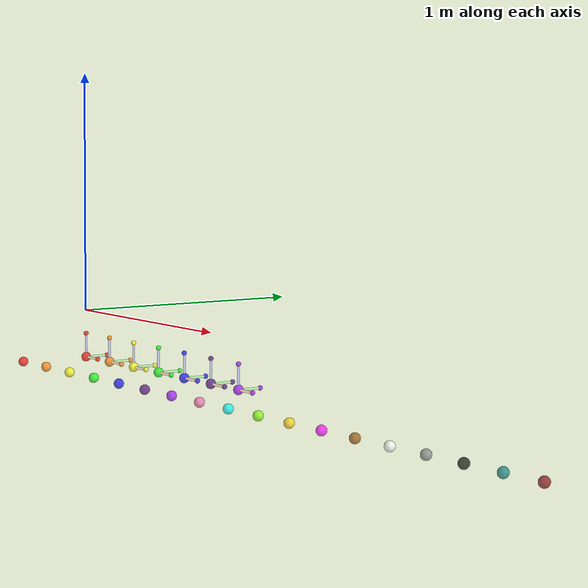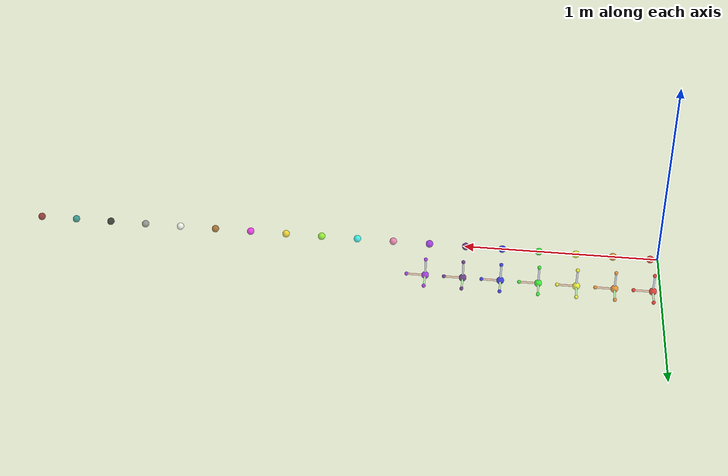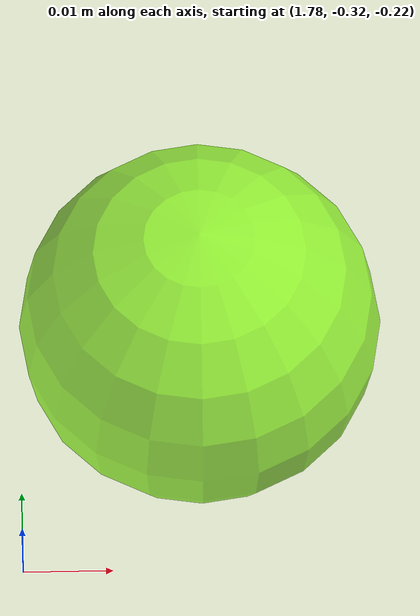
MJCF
<mujoco model="debug_axis">

    <!-- ─────────────  RE-USABLE ASSETS  ───────────── -->
    <asset>
        <!-- body colours -->
        <material name="frame_red" rgba="1   0   0   0.7"/>
        <material name="frame_orange" rgba="1   0.5 0   0.7"/>
        <material name="frame_yellow" rgba="1   1   0   0.7"/>
        <material name="frame_green" rgba="0   1   0   0.7"/>
        <material name="frame_blue" rgba="0   0   1   0.7"/>
        <material name="frame_indigo" rgba="0.3 0   0.5 0.7"/>
        <material name="frame_violet" rgba="0.6 0   1   0.7"/>
        <material name="frame_pink" rgba="1.0 0.4 0.7 0.7"/>
        <material name="frame_cyan" rgba="0.0 1.0 1.0 0.7"/>
        <material name="frame_lime" rgba="0.5 1.0 0.0 0.7"/>
        <material name="frame_gold" rgba="1.0 0.84 0.0 0.7"/>
        <material name="frame_magenta" rgba="1.0 0.0 1.0 0.7"/>
        <material name="frame_brown" rgba="0.6 0.3 0.0 0.7"/>
        <material name="frame_white" rgba="1.0 1.0 1.0 0.7"/>
        <material name="frame_gray" rgba="0.5 0.5 0.5 0.7"/>
        <material name="frame_black" rgba="0.0 0.0 0.0 0.7"/>
        <material name="frame_teal" rgba="0.0 0.5 0.5 0.7"/>
        <material name="frame_maroon" rgba="0.5 0.0 0.0 0.7"/>

        <!-- axis cylinders (faded) -->
        <material name="axis_x" rgba="1 0 0 0.2"/>
        <material name="axis_y" rgba="0 1 0 0.2"/>
        <material name="axis_z" rgba="0 0 1 0.2"/>

    </asset>

    <!-- ─────────────  COMMON GEOM SETTINGS  ───────────── -->
    <default>
        <geom contype="0" conaffinity="0"/>
        <default class="origin">
            <geom type="sphere" size="0.02"/>
        </default>
        <default class="axis">
            <geom type="cylinder" size="0.005"/>
        </default>
        <default class="end">
            <geom type="sphere" size="0.01"/>
        </default>
    </default>

    <!-- ─────────────  WORLD  ───────────── -->
    <worldbody>

        <!-- helper: one body per colour / frame -->
        <body name="debug_axis_0" pos="0.0 0 -0.2" mocap="true">
            <geom class="origin" material="frame_red"/>
            <geom class="axis" material="axis_x" fromto="0 0 0 0.1 0 0"/>
            <geom class="end" material="frame_red" pos="0.1 0 0"/>
            <geom class="axis" material="axis_y" fromto="0 0 0 0 0.1 0"/>
            <geom class="end" material="frame_red" pos="0 0.1 0"/>
            <geom class="axis" material="axis_z" fromto="0 0 0 0 0 0.1"/>
            <geom class="end" material="frame_red" pos="0 0 0.1"/>
        </body>

        <body name="debug_axis_1" pos="0.2 0 -0.2" mocap="true">
            <geom class="origin" material="frame_orange"/>
            <geom class="axis" material="axis_x" fromto="0 0 0 0.1 0 0"/>
            <geom class="end" material="frame_orange" pos="0.1 0 0"/>
            <geom class="axis" material="axis_y" fromto="0 0 0 0 0.1 0"/>
            <geom class="end" material="frame_orange" pos="0 0.1 0"/>
            <geom class="axis" material="axis_z" fromto="0 0 0 0 0 0.1"/>
            <geom class="end" material="frame_orange" pos="0 0 0.1"/>
        </body>

        <body name="debug_axis_2" pos="0.4 0 -0.2" mocap="true">
            <geom class="origin" material="frame_yellow"/>
            <geom class="axis" material="axis_x" fromto="0 0 0 0.1 0 0"/>
            <geom class="end" material="frame_yellow" pos="0.1 0 0"/>
            <geom class="axis" material="axis_y" fromto="0 0 0 0 0.1 0"/>
            <geom class="end" material="frame_yellow" pos="0 0.1 0"/>
            <geom class="axis" material="axis_z" fromto="0 0 0 0 0 0.1"/>
            <geom class="end" material="frame_yellow" pos="0 0 0.1"/>
        </body>

        <body name="debug_axis_3" pos="0.6 0 -0.2" mocap="true">
            <geom class="origin" material="frame_green"/>
            <geom class="axis" material="axis_x" fromto="0 0 0 0.1 0 0"/>
            <geom class="end" material="frame_green" pos="0.1 0 0"/>
            <geom class="axis" material="axis_y" fromto="0 0 0 0 0.1 0"/>
            <geom class="end" material="frame_green" pos="0 0.1 0"/>
            <geom class="axis" material="axis_z" fromto="0 0 0 0 0 0.1"/>
            <geom class="end" material="frame_green" pos="0 0 0.1"/>
        </body>

        <body name="debug_axis_4" pos="0.8 0 -0.2" mocap="true">
            <geom class="origin" material="frame_blue"/>
            <geom class="axis" material="axis_x" fromto="0 0 0 0.1 0 0"/>
            <geom class="end" material="frame_blue" pos="0.1 0 0"/>
            <geom class="axis" material="axis_y" fromto="0 0 0 0 0.1 0"/>
            <geom class="end" material="frame_blue" pos="0 0.1 0"/>
            <geom class="axis" material="axis_z" fromto="0 0 0 0 0 0.1"/>
            <geom class="end" material="frame_blue" pos="0 0 0.1"/>
        </body>

        <body name="debug_axis_5" pos="1.0 0 -0.2" mocap="true">
            <geom class="origin" material="frame_indigo"/>
            <geom class="axis" material="axis_x" fromto="0 0 0 0.1 0 0"/>
            <geom class="end" material="frame_indigo" pos="0.1 0 0"/>
            <geom class="axis" material="axis_y" fromto="0 0 0 0 0.1 0"/>
            <geom class="end" material="frame_indigo" pos="0 0.1 0"/>
            <geom class="axis" material="axis_z" fromto="0 0 0 0 0 0.1"/>
            <geom class="end" material="frame_indigo" pos="0 0 0.1"/>
        </body>

        <body name="debug_axis_6" pos="1.2 0 -0.2" mocap="true">
            <geom class="origin" material="frame_violet"/>
            <geom class="axis" material="axis_x" fromto="0 0 0 0.1 0 0"/>
            <geom class="end" material="frame_violet" pos="0.1 0 0"/>
            <geom class="axis" material="axis_y" fromto="0 0 0 0 0.1 0"/>
            <geom class="end" material="frame_violet" pos="0 0.1 0"/>
            <geom class="axis" material="axis_z" fromto="0 0 0 0 0 0.1"/>
            <geom class="end" material="frame_violet" pos="0 0 0.1"/>
        </body>

        <body name="debug_sphere_0" pos="0.0 -0.3 -0.2" mocap="true">
            <geom type="sphere" size="0.02" material="frame_red"/>
        </body>
        <body name="debug_sphere_1" pos="0.2 -0.3 -0.2" mocap="true">
            <geom type="sphere" size="0.02" material="frame_orange"/>
        </body>
        <body name="debug_sphere_2" pos="0.4 -0.3 -0.2" mocap="true">
            <geom type="sphere" size="0.02" material="frame_yellow"/>
        </body>
        <body name="debug_sphere_3" pos="0.6 -0.3 -0.2" mocap="true">
            <geom type="sphere" size="0.02" material="frame_green"/>
        </body>
        <body name="debug_sphere_4" pos="0.8 -0.3 -0.2" mocap="true">
            <geom type="sphere" size="0.02" material="frame_blue"/>
        </body>
        <body name="debug_sphere_5" pos="1.0 -0.3 -0.2" mocap="true">
            <geom type="sphere" size="0.02" material="frame_indigo"/>
        </body>
        <body name="debug_sphere_6" pos="1.2 -0.3 -0.2" mocap="true">
            <geom type="sphere" size="0.02" material="frame_violet"/>
        </body>
        <body name="debug_sphere_7" pos="1.4 -0.3 -0.2" mocap="true">
            <geom type="sphere" size="0.02" material="frame_pink"/>
        </body>
        <body name="debug_sphere_8" pos="1.6 -0.3 -0.2" mocap="true">
            <geom type="sphere" size="0.02" material="frame_cyan"/>
        </body>
        <body name="debug_sphere_9" pos="1.8 -0.3 -0.2" mocap="true">
            <geom type="sphere" size="0.02" material="frame_lime"/>
        </body>
        <body name="debug_sphere_10" pos="2.0 -0.3 -0.2" mocap="true">
            <geom type="sphere" size="0.02" material="frame_gold"/>
        </body>
        <body name="debug_sphere_11" pos="2.2 -0.3 -0.2" mocap="true">
            <geom type="sphere" size="0.02" material="frame_magenta"/>
        </body>
        <body name="debug_sphere_12" pos="2.4 -0.3 -0.2" mocap="true">
            <geom type="sphere" size="0.02" material="frame_brown"/>
        </body>
        <body name="debug_sphere_13" pos="2.6 -0.3 -0.2" mocap="true">
            <geom type="sphere" size="0.02" material="frame_white"/>
        </body>
        <body name="debug_sphere_14" pos="2.8 -0.3 -0.2" mocap="true">
            <geom type="sphere" size="0.02" material="frame_gray"/>
        </body>
        <body name="debug_sphere_15" pos="3.0 -0.3 -0.2" mocap="true">
            <geom type="sphere" size="0.02" material="frame_black"/>
        </body>
        <body name="debug_sphere_16" pos="3.2 -0.3 -0.2" mocap="true">
            <geom type="sphere" size="0.02" material="frame_teal"/>
        </body>
        <body name="debug_sphere_17" pos="3.4 -0.3 -0.2" mocap="true">
            <geom type="sphere" size="0.02" material="frame_maroon"/>
        </body>

    </worldbody>
</mujoco>
